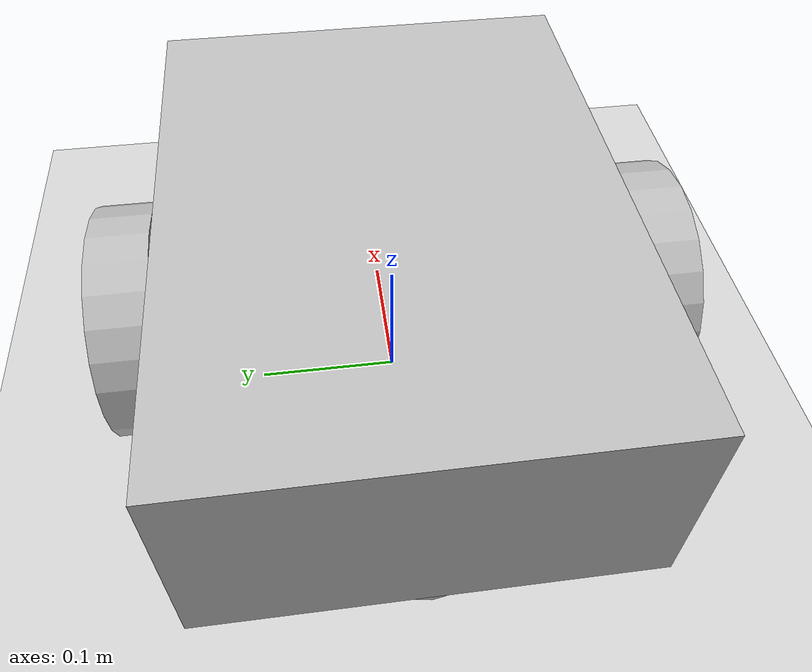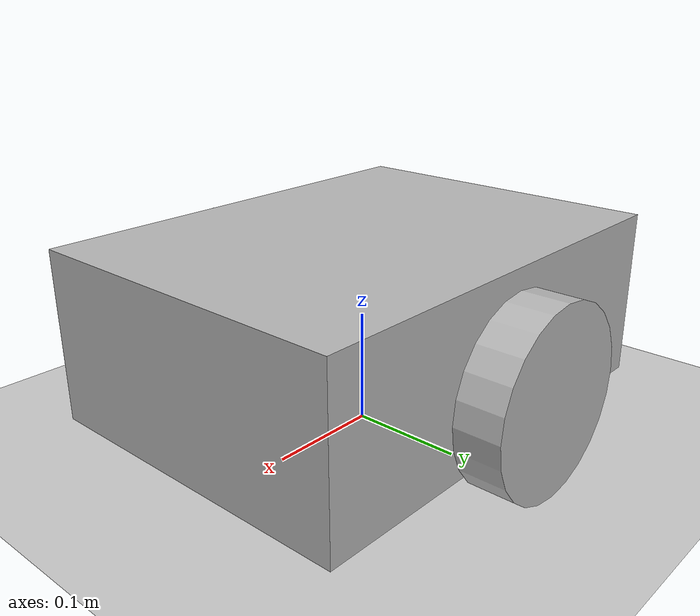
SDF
<?xml version="1.0" ?>
<sdf version="1.9">
  <world name="diffdrive_demo">
    <physics name="1ms" type="ignored">
      <max_step_size>0.001</max_step_size>
      <real_time_factor>1.0</real_time_factor>
    </physics>

    <plugin filename="gz-sim-physics-system"
            name="gz::sim::systems::Physics" />
    <plugin filename="gz-sim-scene-broadcaster-system"
            name="gz::sim::systems::SceneBroadcaster" />
    <plugin filename="gz-sim-user-commands-system"
            name="gz::sim::systems::UserCommands" />
    <!-- required for the gpu_lidar sensor below -->
    <plugin filename="gz-sim-sensors-system"
            name="gz::sim::systems::Sensors">
      <render_engine>ogre2</render_engine>
    </plugin>
    <!-- required for the imu sensor below -->
    <plugin filename="gz-sim-imu-system"
            name="gz::sim::systems::Imu" />

    <light type="directional" name="sun">
      <cast_shadows>true</cast_shadows>
      <pose>0 0 10 0 0 0</pose>
      <diffuse>0.8 0.8 0.8 1</diffuse>
      <specular>0.2 0.2 0.2 1</specular>
      <direction>-0.5 0.1 -0.9</direction>
    </light>

    <model name="ground_plane">
      <static>true</static>
      <link name="link">
        <collision name="collision">
          <geometry>
            <plane>
              <normal>0 0 1</normal>
            </plane>
          </geometry>
        </collision>
        <visual name="visual">
          <geometry>
            <plane>
              <normal>0 0 1</normal>
              <size>100 100</size>
            </plane>
          </geometry>
        </visual>
      </link>
    </model>

    <model name="diffbot" canonical_link="base_link">
      <pose relative_to="world">0 0 0.1 0 0 0</pose>

      <link name="base_link">
        <inertial>
          <mass>5.0</mass>
          <inertia>
            <ixx>0.1</ixx><ixy>0</ixy><ixz>0</ixz>
            <iyy>0.1</iyy><iyz>0</iyz>
            <izz>0.15</izz>
          </inertia>
        </inertial>
        <visual name="visual">
          <geometry>
            <box><size>0.4 0.3 0.15</size></box>
          </geometry>
        </visual>
        <collision name="collision">
          <geometry>
            <box><size>0.4 0.3 0.15</size></box>
          </geometry>
        </collision>

        <!-- lidar mounted at base_link's own origin — see the deviation
             note above on why there is no separate offset frame here -->
        <sensor name="gpu_lidar" type="gpu_lidar">
          <topic>/scan</topic>
          <update_rate>10</update_rate>
          <lidar>
            <scan>
              <horizontal>
                <samples>360</samples>
                <resolution>1</resolution>
                <min_angle>-3.14159</min_angle>
                <max_angle>3.14159</max_angle>
              </horizontal>
              <vertical>
                <samples>1</samples>
                <resolution>1</resolution>
                <min_angle>0</min_angle>
                <max_angle>0</max_angle>
              </vertical>
            </scan>
            <range>
              <min>0.10</min>
              <max>12.0</max>
              <resolution>0.01</resolution>
            </range>
            <noise>
              <type>gaussian</type>
              <mean>0.0</mean>
              <stddev>0.01</stddev>
            </noise>
          </lidar>
          <always_on>1</always_on>
          <visualize>true</visualize>
        </sensor>

        <sensor name="imu_sensor" type="imu">
          <always_on>1</always_on>
          <update_rate>100</update_rate>
          <visualize>true</visualize>
          <topic>/imu</topic>
          <imu>
            <angular_velocity>
              <x><noise type="gaussian"><mean>0.0</mean><stddev>0.0002</stddev></noise></x>
              <y><noise type="gaussian"><mean>0.0</mean><stddev>0.0002</stddev></noise></y>
              <z><noise type="gaussian"><mean>0.0</mean><stddev>0.0002</stddev></noise></z>
            </angular_velocity>
            <linear_acceleration>
              <x><noise type="gaussian"><mean>0.0</mean><stddev>0.017</stddev></noise></x>
              <y><noise type="gaussian"><mean>0.0</mean><stddev>0.017</stddev></noise></y>
              <z><noise type="gaussian"><mean>0.0</mean><stddev>0.017</stddev></noise></z>
            </linear_acceleration>
          </imu>
        </sensor>
      </link>

      <link name="left_wheel">
        <pose relative_to="base_link">0 0.175 -0.02 -1.5707 0 0</pose>
        <inertial>
          <mass>0.5</mass>
          <inertia>
            <ixx>0.001</ixx><ixy>0</ixy><ixz>0</ixz>
            <iyy>0.001</iyy><iyz>0</iyz><izz>0.001</izz>
          </inertia>
        </inertial>
        <visual name="visual">
          <geometry><cylinder><radius>0.08</radius><length>0.04</length></cylinder></geometry>
        </visual>
        <collision name="collision">
          <geometry><cylinder><radius>0.08</radius><length>0.04</length></cylinder></geometry>
        </collision>
      </link>

      <link name="right_wheel">
        <pose relative_to="base_link">0 -0.175 -0.02 -1.5707 0 0</pose>
        <inertial>
          <mass>0.5</mass>
          <inertia>
            <ixx>0.001</ixx><ixy>0</ixy><ixz>0</ixz>
            <iyy>0.001</iyy><iyz>0</iyz><izz>0.001</izz>
          </inertia>
        </inertial>
        <visual name="visual">
          <geometry><cylinder><radius>0.08</radius><length>0.04</length></cylinder></geometry>
        </visual>
        <collision name="collision">
          <geometry><cylinder><radius>0.08</radius><length>0.04</length></cylinder></geometry>
        </collision>
      </link>

      <frame name="caster_frame" attached_to="base_link">
        <pose>-0.15 0 -0.07 0 0 0</pose>
      </frame>
      <link name="caster">
        <pose relative_to="caster_frame" />
        <inertial>
          <mass>0.2</mass>
          <inertia>
            <ixx>0.0005</ixx><ixy>0</ixy><ixz>0</ixz>
            <iyy>0.0005</iyy><iyz>0</iyz><izz>0.0005</izz>
          </inertia>
        </inertial>
        <visual name="visual">
          <geometry><sphere><radius>0.05</radius></sphere></geometry>
        </visual>
        <collision name="collision">
          <geometry><sphere><radius>0.05</radius></sphere></geometry>
        </collision>
      </link>

      <joint name="left_wheel_joint" type="revolute">
        <pose relative_to="left_wheel" />
        <parent>base_link</parent>
        <child>left_wheel</child>
        <axis>
          <xyz expressed_in="__model__">0 1 0</xyz>
          <limit><lower>-1.79769e+308</lower><upper>1.79769e+308</upper></limit>
        </axis>
      </joint>

      <joint name="right_wheel_joint" type="revolute">
        <pose relative_to="right_wheel" />
        <parent>base_link</parent>
        <child>right_wheel</child>
        <axis>
          <xyz expressed_in="__model__">0 1 0</xyz>
          <limit><lower>-1.79769e+308</lower><upper>1.79769e+308</upper></limit>
        </axis>
      </joint>

      <joint name="caster_wheel" type="ball">
        <parent>base_link</parent>
        <child>caster</child>
      </joint>

      <plugin filename="gz-sim-diff-drive-system"
              name="gz::sim::systems::DiffDrive">
        <left_joint>left_wheel_joint</left_joint>
        <right_joint>right_wheel_joint</right_joint>
        <wheel_separation>0.35</wheel_separation>
        <wheel_radius>0.08</wheel_radius>
        <odom_publish_frequency>30</odom_publish_frequency>
        <topic>/cmd_vel</topic>
        <odom_topic>/odom</odom_topic>
        <tf_topic>/tf</tf_topic>
        <frame_id>odom</frame_id>
        <child_frame_id>base_link</child_frame_id>
        <max_linear_velocity>0.6</max_linear_velocity>
        <min_linear_velocity>-0.6</min_linear_velocity>
        <max_angular_velocity>1.5</max_angular_velocity>
        <min_angular_velocity>-1.5</min_angular_velocity>
      </plugin>
    </model>
  </world>
</sdf>
